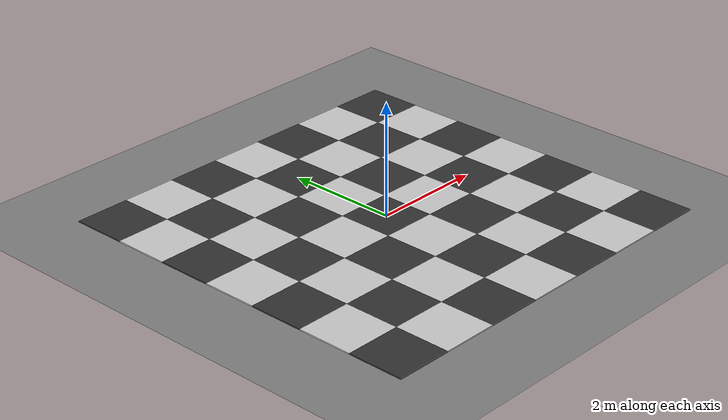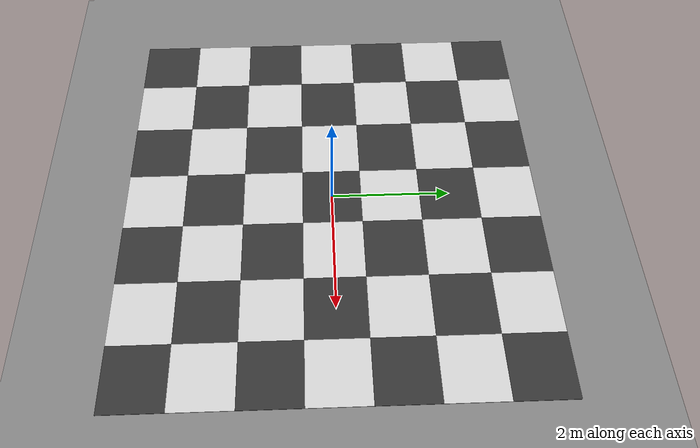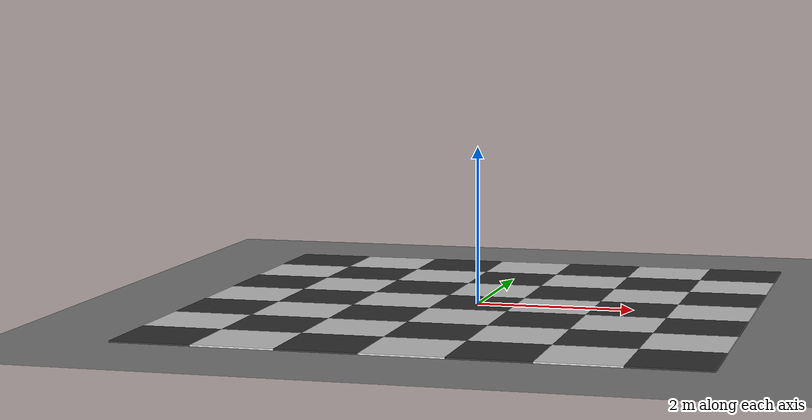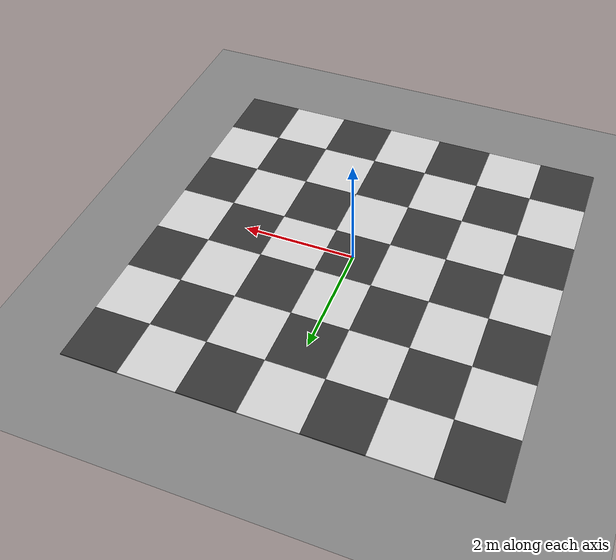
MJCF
<?xml version="1.0" encoding="utf-8"?>
<mujoco model="checkered">
    <compiler angle="radian" meshdir="../models/robots/draco3" autolimits="true"/>
    <option impratio="20" density="1.2" viscosity="2e-05" integrator="RK4" cone="elliptic" solver="PGS" iterations="50"/>
    <size/>
    <visual>
        <map znear="0.001"/>
    </visual>
    <asset>
        <texture type="skybox" builtin="gradient" rgb1="0.9 0.9 1" rgb2="0.2 0.3 0.4" width="256" height="1536"/>
        <material name="dark_square" rgba="0.2 0.2 0.2 1"/>
        <material name="light_square" rgba="0.8 0.8 0.8 1"/>
        <material name="ground" rgba="0.5 0.5 0.5 1"/>
    </asset>
    <worldbody>
        <!-- Checkered floor pattern -->
        <geom name="ground" type="plane" size="10 10 0.01" pos="0 0 0" material="ground"/>
        <!-- Create checkered pattern -->
        <!-- Row -3 -->
        <geom name="square_-3_-3" type="box" size="0.5 0.5 0.01" pos="-3 -3 0" material="dark_square"/>
        <geom name="square_-3_-2" type="box" size="0.5 0.5 0.01" pos="-3 -2 0" material="light_square"/>
        <geom name="square_-3_-1" type="box" size="0.5 0.5 0.01" pos="-3 -1 0" material="dark_square"/>
        <geom name="square_-3_0" type="box" size="0.5 0.5 0.01" pos="-3 0 0" material="light_square"/>
        <geom name="square_-3_1" type="box" size="0.5 0.5 0.01" pos="-3 1 0" material="dark_square"/>
        <geom name="square_-3_2" type="box" size="0.5 0.5 0.01" pos="-3 2 0" material="light_square"/>
        <geom name="square_-3_3" type="box" size="0.5 0.5 0.01" pos="-3 3 0" material="dark_square"/>
        <!-- Row -2 -->
        <geom name="square_-2_-3" type="box" size="0.5 0.5 0.01" pos="-2 -3 0" material="light_square"/>
        <geom name="square_-2_-2" type="box" size="0.5 0.5 0.01" pos="-2 -2 0" material="dark_square"/>
        <geom name="square_-2_-1" type="box" size="0.5 0.5 0.01" pos="-2 -1 0" material="light_square"/>
        <geom name="square_-2_0" type="box" size="0.5 0.5 0.01" pos="-2 0 0" material="dark_square"/>
        <geom name="square_-2_1" type="box" size="0.5 0.5 0.01" pos="-2 1 0" material="light_square"/>
        <geom name="square_-2_2" type="box" size="0.5 0.5 0.01" pos="-2 2 0" material="dark_square"/>
        <geom name="square_-2_3" type="box" size="0.5 0.5 0.01" pos="-2 3 0" material="light_square"/>
        <!-- Row -1 -->
        <geom name="square_-1_-3" type="box" size="0.5 0.5 0.01" pos="-1 -3 0" material="dark_square"/>
        <geom name="square_-1_-2" type="box" size="0.5 0.5 0.01" pos="-1 -2 0" material="light_square"/>
        <geom name="square_-1_-1" type="box" size="0.5 0.5 0.01" pos="-1 -1 0" material="dark_square"/>
        <geom name="square_-1_0" type="box" size="0.5 0.5 0.01" pos="-1 0 0" material="light_square"/>
        <geom name="square_-1_1" type="box" size="0.5 0.5 0.01" pos="-1 1 0" material="dark_square"/>
        <geom name="square_-1_2" type="box" size="0.5 0.5 0.01" pos="-1 2 0" material="light_square"/>
        <geom name="square_-1_3" type="box" size="0.5 0.5 0.01" pos="-1 3 0" material="dark_square"/>
        <!-- Row 0 -->
        <geom name="square_0_-3" type="box" size="0.5 0.5 0.01" pos="0 -3 0" material="light_square"/>
        <geom name="square_0_-2" type="box" size="0.5 0.5 0.01" pos="0 -2 0" material="dark_square"/>
        <geom name="square_0_-1" type="box" size="0.5 0.5 0.01" pos="0 -1 0" material="light_square"/>
        <geom name="square_0_0" type="box" size="0.5 0.5 0.01" pos="0 0 0" material="dark_square"/>
        <geom name="square_0_1" type="box" size="0.5 0.5 0.01" pos="0 1 0" material="light_square"/>
        <geom name="square_0_2" type="box" size="0.5 0.5 0.01" pos="0 2 0" material="dark_square"/>
        <geom name="square_0_3" type="box" size="0.5 0.5 0.01" pos="0 3 0" material="light_square"/>
        <!-- Row 1 -->
        <geom name="square_1_-3" type="box" size="0.5 0.5 0.01" pos="1 -3 0" material="dark_square"/>
        <geom name="square_1_-2" type="box" size="0.5 0.5 0.01" pos="1 -2 0" material="light_square"/>
        <geom name="square_1_-1" type="box" size="0.5 0.5 0.01" pos="1 -1 0" material="dark_square"/>
        <geom name="square_1_0" type="box" size="0.5 0.5 0.01" pos="1 0 0" material="light_square"/>
        <geom name="square_1_1" type="box" size="0.5 0.5 0.01" pos="1 1 0" material="dark_square"/>
        <geom name="square_1_2" type="box" size="0.5 0.5 0.01" pos="1 2 0" material="light_square"/>
        <geom name="square_1_3" type="box" size="0.5 0.5 0.01" pos="1 3 0" material="dark_square"/>
        <!-- Row 2 -->
        <geom name="square_2_-3" type="box" size="0.5 0.5 0.01" pos="2 -3 0" material="light_square"/>
        <geom name="square_2_-2" type="box" size="0.5 0.5 0.01" pos="2 -2 0" material="dark_square"/>
        <geom name="square_2_-1" type="box" size="0.5 0.5 0.01" pos="2 -1 0" material="light_square"/>
        <geom name="square_2_0" type="box" size="0.5 0.5 0.01" pos="2 0 0" material="dark_square"/>
        <geom name="square_2_1" type="box" size="0.5 0.5 0.01" pos="2 1 0" material="light_square"/>
        <geom name="square_2_2" type="box" size="0.5 0.5 0.01" pos="2 2 0" material="dark_square"/>
        <geom name="square_2_3" type="box" size="0.5 0.5 0.01" pos="2 3 0" material="light_square"/>
        <!-- Row 3 -->
        <geom name="square_3_-3" type="box" size="0.5 0.5 0.01" pos="3 -3 0" material="dark_square"/>
        <geom name="square_3_-2" type="box" size="0.5 0.5 0.01" pos="3 -2 0" material="light_square"/>
        <geom name="square_3_-1" type="box" size="0.5 0.5 0.01" pos="3 -1 0" material="dark_square"/>
        <geom name="square_3_0" type="box" size="0.5 0.5 0.01" pos="3 0 0" material="light_square"/>
        <geom name="square_3_1" type="box" size="0.5 0.5 0.01" pos="3 1 0" material="dark_square"/>
        <geom name="square_3_2" type="box" size="0.5 0.5 0.01" pos="3 2 0" material="light_square"/>
        <geom name="square_3_3" type="box" size="0.5 0.5 0.01" pos="3 3 0" material="dark_square"/>
        <!-- Lighting -->
        <light pos="1 1 1.5" dir="-0.19245 -0.19245 -0.96225" directional="true" castshadow="false"/>
        <!-- Cameras -->
        <camera name="envview" pos="-2 0 0.75" quat="0.5 -0.5 -0.5 0.5" fovy="89"/>
        <camera name="backview" pos="-2 0 0.75" quat="0.5 -0.5 -0.5 0.5" fovy="60"/>
        <camera name="testview" pos="1.5 0 1" quat="0.5 -0.5 0.5 -0.5"/>
        <camera name="upview" pos="-1 0 2" quat="0.653281 -0.270598 -0.270598 0.653281"/>
        <camera name="kitchenview" pos="1.2 0 1" quat="0.5 -0.5 0.5 -0.5"/>
        <camera name="objectview" pos="0.5 0 3" quat="0.707107 0 0 0.707107"/>
        <camera name="door_testview" pos="3 0 1.1" quat="0.5 -0.5 0.5 -0.5"/>
        <camera name="door_topview" pos="2.2 0 2" quat="0.707107 0 0 0.707107"/>
        <camera name="topview" pos="1 0 2.2" quat="0.707107 0 0 0.707107"/>
        <camera name="frontview" pos="1.6 0 1.45" quat="0.560842 0.430646 0.430646 0.560842"/>
        <camera name="birdview" pos="-0.2 0 3" quat="0.707107 0 0 0.707107"/>
        <camera name="agentview" pos="0.5 0 1.35" quat="0.653098 0.271041 0.271041 0.653098"/>
        <camera name="sideview" pos="-0.0565177 1.27612 1.48796" quat="0.00990507 0.00687796 0.591223 0.806418"/>
    </worldbody>
    <default>
        <joint damping="0.1" armature="0.1"/>
    </default>
</mujoco>
